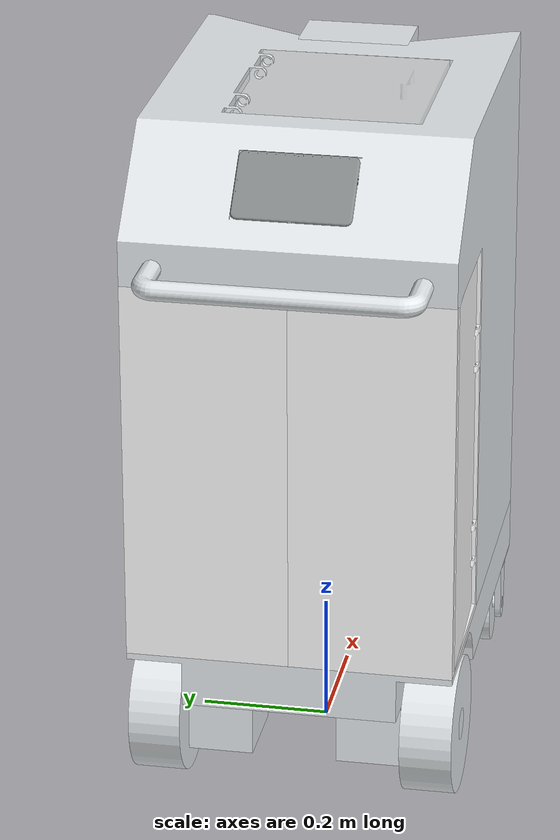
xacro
<?xml version="1.0" encoding="utf-8"?>
<robot name="hivebot_trolley">
  <link name="world"/>
  <link name="base_footprint" xmlns:xacro="http://www.ros.org/wiki/xacro"/>

  <joint name="base_joint" type="fixed">
    <origin xyz="0 0 0.05" rpy="0 0 0" />
    <parent link="base_footprint"/>
    <child link="base_link" />
  </joint>

  <link
    name="base_link">
    <inertial>
      <origin
        xyz="0.0235732763735559 -1.16156711654192E-16 -0.0393476182287232"
        rpy="0 0 0" />
      <mass
        value="63.3540430981409" />
      <inertia
        ixx="1.19803483723971"
        ixy="3.94354928014663E-16"
        ixz="0.00926065111324139"
        iyy="2.11869396240118"
        iyz="2.70482966665085E-18"
        izz="3.24789298834746" />
    </inertial>
    <visual>
      <origin
        xyz="0 0 0"
        rpy="0 0 0" />
      <geometry>
        <mesh
          filename="package://hivebot_trolley/meshes/base_link.STL" />
      </geometry>
      <material
        name="">
        <color
          rgba="0.898039215686275 0.917647058823529 0.929411764705882 1" />
      </material>
    </visual>
    <collision>
      <origin
        xyz="0 0 0"
        rpy="0 0 0" />
      <geometry>
        <mesh
          filename="package://hivebot_trolley/meshes/base_link.STL" />
      </geometry>
    </collision>
  </link>
  <joint
    name="compartment-2-to-base"
    type="fixed">
    <origin
      xyz="-0.2 -0.125 0"
      rpy="0 0 0" />
    <parent
      link="base_link" />
    <child
      link="compartment-2" />
    <axis
      xyz="0 0 0" />
  </joint>
  <link
    name="front_wheel_mount_plate_1">
    <inertial>
      <origin
        xyz="0 0 0.00372376098180309"
        rpy="0 0 0" />
      <mass
        value="0.0885122104446696" />
      <inertia
        ixx="4.96589186338358E-05"
        ixy="8.76460525250229E-21"
        ixz="4.57370748529084E-22"
        iyy="4.96589186338358E-05"
        iyz="-1.38813531491213E-23"
        izz="9.88794947001013E-05" />
    </inertial>
    <visual>
      <origin
        xyz="0 0 0"
        rpy="0 0 0" />
      <geometry>
        <mesh
          filename="package://hivebot_trolley/meshes/front_wheel_mount_plate_1.STL" />
      </geometry>
      <material
        name="">
        <color
          rgba="0.898039215686275 0.917647058823529 0.929411764705882 1" />
      </material>
    </visual>
    <collision>
      <origin
        xyz="0 0 0"
        rpy="0 0 0" />
      <geometry>
        <mesh
          filename="package://hivebot_trolley/meshes/front_wheel_mount_plate_1.STL" />
      </geometry>
    </collision>
  </link>
  <joint
    name="front_wheel_mount_plate_1_tobase"
    type="fixed">
    <origin
      xyz="0.28 -0.205 -0.086"
      rpy="0 0 0" />
    <parent
      link="base_link" />
    <child
      link="front_wheel_mount_plate_1" />
    <axis
      xyz="0 0 0" />
  </joint>
  <link
    name="front_wheel_holder_1">
    <inertial>
      <origin
        xyz="0 -5.55111512312578E-17 -0.0353498305391301"
        rpy="0 0 0" />
      <mass
        value="0.40765592096642" />
      <inertia
        ixx="0.000762776791330026"
        ixy="1.03138220220553E-05"
        ixz="6.91311896835273E-20"
        iyy="0.000501675770186767"
        iyz="-1.75192826322455E-19"
        izz="0.000528106575482838" />
    </inertial>
    <visual>
      <origin
        xyz="0 0 0"
        rpy="0 0 0" />
      <geometry>
        <mesh
          filename="package://hivebot_trolley/meshes/front_wheel_holder_1.STL" />
      </geometry>
      <material
        name="">
        <color
          rgba="0.898039215686275 0.917647058823529 0.929411764705882 1" />
      </material>
    </visual>
    <collision>
      <origin
        xyz="0 0 0"
        rpy="0 0 0" />
      <geometry>
        <mesh
          filename="package://hivebot_trolley/meshes/front_wheel_holder_1.STL" />
      </geometry>
    </collision>
  </link>
  <joint
    name="front_wheel_holder_1_toplate"
    type="fixed">
    <origin
      xyz="0 0 0"
      rpy="0 0 0" />
    <parent
      link="front_wheel_mount_plate_1" />
    <child
      link="front_wheel_holder_1" />
    <axis
      xyz="0 0 -1" />
  </joint>
  <link
    name="front_wheel_1">
    <inertial>
      <origin
        xyz="5.55111512312578E-17 8.32667268468867E-17 -5.55111512312578E-17"
        rpy="0 0 0" />
      <mass
        value="1.73558464244813" />
      <inertia
        ixx="0.00211027858785498"
        ixy="-5.2803822366633E-05"
        ixz="1.94419187005969E-19"
        iyy="0.00344704122644933"
        iyz="-2.97963645002492E-19"
        izz="0.00210819601428248" />
    </inertial>
    <visual>
      <origin
        xyz="0 0 0"
        rpy="0 0 0" />
      <geometry>
        <mesh
          filename="package://hivebot_trolley/meshes/front_wheel_1.STL" />
      </geometry>
      <material
        name="">
        <color
          rgba="0.898039215686275 0.917647058823529 0.929411764705882 1" />
      </material>
    </visual>
    <collision>
      <origin
        xyz="0 0 0"
        rpy="0 0 0" />
      <geometry>
        <mesh
          filename="package://hivebot_trolley/meshes/front_wheel_1.STL" />
      </geometry>
    </collision>
  </link>
  <joint
    name="front_wheel_1_toholder"
    type="fixed">
    <origin
      xyz="0 0 -0.081"
      rpy="0 0 0" />
    <parent
      link="front_wheel_holder_1" />
    <child
      link="front_wheel_1" />
    <axis
      xyz="-0.0394091875345171 0.99922315622581 0" />
  </joint>
  <link
    name="front_wheel_mount_plate_2">
    <inertial>
      <origin
        xyz="0 -2.77555756156289E-17 0.00372376098180309"
        rpy="0 0 0" />
      <mass
        value="0.0885122104446697" />
      <inertia
        ixx="4.96589186338359E-05"
        ixy="1.33252491072572E-20"
        ixz="1.0447510163914E-22"
        iyy="4.96589186338359E-05"
        iyz="6.3556804032152E-22"
        izz="9.88794947001014E-05" />
    </inertial>
    <visual>
      <origin
        xyz="0 0 0"
        rpy="0 0 0" />
      <geometry>
        <mesh
          filename="package://hivebot_trolley/meshes/front_wheel_mount_plate_2.STL" />
      </geometry>
      <material
        name="">
        <color
          rgba="0.898039215686275 0.917647058823529 0.929411764705882 1" />
      </material>
    </visual>
    <collision>
      <origin
        xyz="0 0 0"
        rpy="0 0 0" />
      <geometry>
        <mesh
          filename="package://hivebot_trolley/meshes/front_wheel_mount_plate_2.STL" />
      </geometry>
    </collision>
  </link>
  <joint
    name="front_wheel_mount_plate_2_tobase"
    type="fixed">
    <origin
      xyz="0.28 0.205 -0.086"
      rpy="0 0 0" />
    <parent
      link="base_link" />
    <child
      link="front_wheel_mount_plate_2" />
    <axis
      xyz="0 0 0" />
  </joint>
  <link
    name="front_wheel_holder_2">
    <inertial>
      <origin
        xyz="-5.55111512312578E-17 -5.55111512312578E-17 -0.0353498305391302"
        rpy="0 0 0" />
      <mass
        value="0.40765592096642" />
      <inertia
        ixx="0.00076152629456158"
        ixy="2.07681767546495E-05"
        ixz="-6.15417341469107E-20"
        iyy="0.000502926266955213"
        iyz="3.73082590857221E-19"
        izz="0.000528106575482838" />
    </inertial>
    <visual>
      <origin
        xyz="0 0 0"
        rpy="0 0 0" />
      <geometry>
        <mesh
          filename="package://hivebot_trolley/meshes/front_wheel_holder_2.STL" />
      </geometry>
      <material
        name="">
        <color
          rgba="0.898039215686275 0.917647058823529 0.929411764705882 1" />
      </material>
    </visual>
    <collision>
      <origin
        xyz="0 0 0"
        rpy="0 0 0" />
      <geometry>
        <mesh
          filename="package://hivebot_trolley/meshes/front_wheel_holder_2.STL" />
      </geometry>
    </collision>
  </link>
  <joint
    name="front_wheel_holder_2_toplate"
    type="fixed">
    <origin
      xyz="0 0 0"
      rpy="0 0 0" />
    <parent
      link="front_wheel_mount_plate_2" />
    <child
      link="front_wheel_holder_2" />
    <axis
      xyz="0 0 -1" />
  </joint>
  <link
    name="front_wheel_2">
    <inertial>
      <origin
        xyz="5.55111512312578E-17 0 0"
        rpy="0 0 0" />
      <mass
        value="1.73558464244813" />
      <inertia
        ixx="0.00211668077407555"
        ixy="-0.000106327132064745"
        ixz="-2.97271341358694E-19"
        iyy="0.00344063904022875"
        iyz="-1.72056927832268E-21"
        izz="0.00210819601428248" />
    </inertial>
    <visual>
      <origin
        xyz="0 0 0"
        rpy="0 0 0" />
      <geometry>
        <mesh
          filename="package://hivebot_trolley/meshes/front_wheel_2.STL" />
      </geometry>
      <material
        name="">
        <color
          rgba="0.898039215686275 0.917647058823529 0.929411764705882 1" />
      </material>
    </visual>
    <collision>
      <origin
        xyz="0 0 0"
        rpy="0 0 0" />
      <geometry>
        <mesh
          filename="package://hivebot_trolley/meshes/front_wheel_2.STL" />
      </geometry>
    </collision>
  </link>
  <joint
    name="front_wheel_2_toholder"
    type="fixed">
    <origin
      xyz="0 0 -0.081"
      rpy="0 0 0" />
    <parent
      link="front_wheel_holder_2" />
    <child
      link="front_wheel_2" />
    <axis
      xyz="0.0795457683033873 -0.996831214772603 0" />
  </joint>
  <link
    name="back_wheel_holder_2">
    <inertial>
      <origin
        xyz="-2.77555756156289E-17 0.12370581952403 2.77555756156289E-17"
        rpy="0 0 0" />
      <mass
        value="3.69062219624929" />
      <inertia
        ixx="0.00912658772080383"
        ixy="8.63502453250557E-19"
        ixz="-5.57023878196132E-19"
        iyy="0.00672881943632791"
        iyz="-2.81940192519475E-19"
        izz="0.0103145877208038" />
    </inertial>
    <visual>
      <origin
        xyz="0 0 0"
        rpy="0 0 0" />
      <geometry>
        <mesh
          filename="package://hivebot_trolley/meshes/back_wheel_holder_2.STL" />
      </geometry>
      <material
        name="">
        <color
          rgba="0.898039215686275 0.917647058823529 0.929411764705882 1" />
      </material>
    </visual>
    <collision>
      <origin
        xyz="0 0 0"
        rpy="0 0 0" />
      <geometry>
        <mesh
          filename="package://hivebot_trolley/meshes/back_wheel_holder_2.STL" />
      </geometry>
    </collision>
  </link>
  <joint
    name="back_wheel_holder_2_tobase"
    type="fixed">
    <origin
      xyz="-0.2185 -0.25 -0.13"
      rpy="0 0 0" />
    <parent
      link="base_link" />
    <child
      link="back_wheel_holder_2" />
    <axis
      xyz="0 0 0" />
  </joint>
  <link
    name="back_wheel_2">
    <inertial>
      <origin
        xyz="-5.55111512312578E-17 0.0399999999999996 4.16333634234434E-16"
        rpy="0 0 0" />
      <mass
        value="7.27255451520401" />
      <inertia
        ixx="0.0256368152469609"
        ixy="-3.1162102280413E-18"
        ixz="-1.17965325757309E-22"
        iyy="0.0435162390110376"
        iyz="2.68645908030935E-18"
        izz="0.0256368152469609" />
    </inertial>
    <visual>
      <origin
        xyz="0 0 0"
        rpy="0 0 0" />
      <geometry>
        <mesh
          filename="package://hivebot_trolley/meshes/back_wheel_2.STL" />
      </geometry>
      <material
        name="">
        <color
          rgba="0.898039215686275 0.917647058823529 0.929411764705882 1" />
      </material>
    </visual>
    <collision>
      <origin
        xyz="0 0 0"
        rpy="0 0 0" />
      <geometry>
        <mesh
          filename="package://hivebot_trolley/meshes/back_wheel_2.STL" />
      </geometry>
    </collision>
  </link>
  <joint
    name="back_wheel_2_toholder"
    type="fixed">
    <origin
      xyz="0 0 0"
      rpy="0 0 0" />
    <parent
      link="back_wheel_holder_2" />
    <child
      link="back_wheel_2" />
    <axis
      xyz="0 1 0" />
  </joint>
  <link
    name="back_wheel_holder_1">
    <inertial>
      <origin
        xyz="2.77555756156289E-17 -0.12370581952403 -2.77555756156289E-17"
        rpy="0 0 0" />
      <mass
        value="3.69062219624929" />
      <inertia
        ixx="0.00912658772080382"
        ixy="-5.58383894595012E-19"
        ixz="8.67342168411457E-19"
        iyy="0.00672881943632791"
        iyz="6.69411038953511E-20"
        izz="0.0103145877208038" />
    </inertial>
    <visual>
      <origin
        xyz="0 0 0"
        rpy="0 0 0" />
      <geometry>
        <mesh
          filename="package://hivebot_trolley/meshes/back_wheel_holder_1.STL" />
      </geometry>
      <material
        name="">
        <color
          rgba="0.898039215686275 0.917647058823529 0.929411764705882 1" />
      </material>
    </visual>
    <collision>
      <origin
        xyz="0 0 0"
        rpy="0 0 0" />
      <geometry>
        <mesh
          filename="package://hivebot_trolley/meshes/back_wheel_holder_1.STL" />
      </geometry>
    </collision>
  </link>
  <joint
    name="back_wheel_holder_1_tobase"
    type="fixed">
    <origin
      xyz="-0.2185 0.25 -0.13"
      rpy="0 0 0" />
    <parent
      link="base_link" />
    <child
      link="back_wheel_holder_1" />
    <axis
      xyz="0 0 0" />
  </joint>
  <link
    name="back_wheel_1">
    <inertial>
      <origin
        xyz="-5.55111512312578E-17 -0.04 0"
        rpy="0 0 0" />
      <mass
        value="7.27255451520401" />
      <inertia
        ixx="0.0256368152469609"
        ixy="-2.25459743055601E-18"
        ixz="1.57683124065269E-19"
        iyy="0.0435162390110376"
        iyz="4.84744605090424E-18"
        izz="0.0256368152469609" />
    </inertial>
    <visual>
      <origin
        xyz="0 0 0"
        rpy="0 0 0" />
      <geometry>
        <mesh
          filename="package://hivebot_trolley/meshes/back_wheel_1.STL" />
      </geometry>
      <material
        name="">
        <color
          rgba="0.898039215686275 0.917647058823529 0.929411764705882 1" />
      </material>
    </visual>
    <collision>
      <origin
        xyz="0 0 0"
        rpy="0 0 0" />
      <geometry>
        <mesh
          filename="package://hivebot_trolley/meshes/back_wheel_1.STL" />
      </geometry>
    </collision>
  </link>
  <joint
    name="back_wheel_1_toholder"
    type="fixed">
    <origin
      xyz="0 0 0"
      rpy="0 0 0" />
    <parent
      link="back_wheel_holder_1" />
    <child
      link="back_wheel_1" />
    <axis
      xyz="0 -1 0" />
  </joint>
  <link
    name="guiding_frame-2">
    <inertial>
      <origin
        xyz="5.55111512312578E-17 -1.36557830061531E-16 -0.52082343378767"
        rpy="0 0 0" />
      <mass
        value="15.546168" />
      <inertia
        ixx="1.04667928751446"
        ixy="-1.21627735877006E-18"
        ixz="9.73209658663459E-17"
        iyy="0.99672874017046"
        iyz="1.5679887871354E-16"
        izz="0.076308340032" />
    </inertial>
    <visual>
      <origin
        xyz="0 0 0"
        rpy="0 0 0" />
      <geometry>
        <mesh
          filename="package://hivebot_trolley/meshes/guiding_frame-2.STL" />
      </geometry>
      <material
        name="">
        <color
          rgba="0.898039215686275 0.917647058823529 0.929411764705882 1" />
      </material>
    </visual>
    <collision>
      <origin
        xyz="0 0 0"
        rpy="0 0 0" />
      <geometry>
        <mesh
          filename="package://hivebot_trolley/meshes/guiding_frame-2.STL" />
      </geometry>
    </collision>
  </link>
  <joint
    name="guiding-frame-2-tobase"
    type="fixed">
    <origin
      xyz="0.275 0 0.81"
      rpy="0 0 0" />
    <parent
      link="base_link" />
    <child
      link="guiding_frame-2" />
    <axis
      xyz="0 0 0" />
  </joint>
  <link
    name="mount-box">
    <inertial>
      <origin
        xyz="-3.33066907387547E-16 -5.43166688588743E-17 8.31973379078477E-13"
        rpy="0 0 0" />
      <mass
        value="3.88364559868246" />
      <inertia
        ixx="0.00932475709657866"
        ixy="-3.73105112956337E-19"
        ixz="-7.61186554870903E-19"
        iyy="0.00785069349852472"
        iyz="3.77869461474261E-19"
        izz="0.00784612520652471" />
    </inertial>
    <visual>
      <origin
        xyz="0.005 0 0"
        rpy="0 0 0" />
      <geometry>
        <mesh
          filename="package://hivebot_trolley/meshes/mount-box.STL" />
      </geometry>
      <material
        name="">
        <color
          rgba="0.898039215686275 0.917647058823529 0.929411764705882 1" />
      </material>
    </visual>
    <collision>
      <origin
        xyz="0.005 0 0"
        rpy="0 0 0" />
      <geometry>
        <mesh
          filename="package://hivebot_trolley/meshes/mount-box.STL" />
      </geometry>
    </collision>
  </link>
  <joint
    name="mount_box_to_frame"
    type="prismatic">
    <origin
      xyz="0 0 -0.57843375382"
      rpy="0 0 0" />
    <parent
      link="guiding_frame-2" />
    <child
      link="mount-box" />
    <axis
      xyz="0 0 1" />
    <limit
      lower="0"
      upper="0.48"
      effort="1000"
      velocity="0" />
  </joint>
  <link
    name="surrounding-frame">
    <inertial>
      <origin
        xyz="0.0846729181735194 0.000767773564878785 0.214525253910696"
        rpy="0 0 0" />
      <mass
        value="82.7476434299921" />
      <inertia
        ixx="3.78200016445154"
        ixy="-0.00222325591596084"
        ixz="-0.0201090148476572"
        iyy="3.39224065150316"
        iyz="-0.00236895559099694"
        izz="1.86426383436205" />
    </inertial>
    <visual>
      <origin
        xyz="0 0 0"
        rpy="0 0 0" />
      <geometry>
        <mesh
          filename="package://hivebot_trolley/meshes/surrounding-frame.STL" />
      </geometry>
      <material
        name="">
        <color
          rgba="0.898039215686275 0.917647058823529 0.929411764705882 1" />
      </material>
    </visual>
    <collision>
      <origin
        xyz="0 0 0"
        rpy="0 0 0" />
      <geometry>
        <mesh
          filename="package://hivebot_trolley/meshes/surrounding-frame.STL" />
      </geometry>
    </collision>
  </link>
  <joint
    name="surrounding-frame-to-base"
    type="fixed">
    <origin
      xyz="0.0749999999999998 0 0.16"
      rpy="0 0 0" />
    <parent
      link="base_link" />
    <child
      link="surrounding-frame" />
    <axis
      xyz="0 0 0" />
  </joint>
  <link
    name="cover-door">
    <inertial>
      <origin
        xyz="-0.150040997767576 -0.137889670402826 0.000346830907110185"
        rpy="0 0 0" />
      <mass
        value="2.05892920065877" />
      <inertia
        ixx="0.0140981800413022"
        ixy="-8.61535975977684E-06"
        ixz="2.2775979768361E-06"
        iyy="0.0153884352208601"
        iyz="4.71234485426862E-05"
        izz="0.0293377145153787" />
    </inertial>
    <visual>
      <origin
        xyz="0 0 0"
        rpy="0 0 0" />
      <geometry>
        <mesh
          filename="package://hivebot_trolley/meshes/cover-door.STL" />
      </geometry>
      <material
        name="">
        <color
          rgba="1 1 1 0.3" />
      </material>
    </visual>
    <collision>
      <origin
        xyz="0 0 0"
        rpy="0 0 0" />
      <geometry>
        <mesh
          filename="package://hivebot_trolley/meshes/cover-door.STL" />
      </geometry>
    </collision>
  </link>
  <joint
    name="cover-door-to-frame"
    type="fixed">
    <origin
      xyz="0.0899999999999999 0.118551612567476 0.64"
      rpy="0 0 0" />
    <parent
      link="surrounding-frame" />
    <child
      link="cover-door" />
    <axis
      xyz="-1 0 0" />
  </joint>
  <link
    name="tablet">
    <inertial>
      <origin
        xyz="-0.00212538959044117 -1.36883635898138E-05 0.00206874607906293"
        rpy="0 0 0" />
      <mass
        value="0.886766298135032" />
      <inertia
        ixx="0.00278972059920181"
        ixy="1.27724561345949E-07"
        ixz="-0.000432117490733407"
        iyy="0.000869274675297478"
        iyz="1.28403830937449E-07"
        izz="0.00278929527162149" />
    </inertial>
    <visual>
      <origin
        xyz="0 0 0"
        rpy="0 0 0" />
      <geometry>
        <mesh
          filename="package://hivebot_trolley/meshes/tablet.STL" />
      </geometry>
      <material
        name="">
        <color
          rgba="0.529411764705882 0.549019607843137 0.549019607843137 1" />
      </material>
    </visual>
    <collision>
      <origin
        xyz="0 0 0"
        rpy="0 0 0" />
      <geometry>
        <mesh
          filename="package://hivebot_trolley/meshes/tablet.STL" />
      </geometry>
    </collision>
  </link>
  <joint
    name="tablet-to-frame"
    type="fixed">
    <origin
      xyz="-0.323639610306789 0.001 0.579289321881345"
      rpy="0 0 0" />
    <parent
      link="surrounding-frame" />
    <child
      link="tablet" />
    <axis
      xyz="0 0 0" />
  </joint>
  <link
    name="handle">
    <inertial>
      <origin
        xyz="-0.0683128872678795 0.2 0"
        rpy="0 0 0" />
      <mass
        value="1.03600411126002" />
      <inertia
        ixx="0.0211986755913615"
        ixy="-3.76213226232454E-18"
        ixz="5.2805489928396E-20"
        iyy="0.000609084661143678"
        iyz="-5.58622665846924E-19"
        izz="0.0216912097899884" />
    </inertial>
    <visual>
      <origin
        xyz="0 0 0"
        rpy="0 0 0" />
      <geometry>
        <mesh
          filename="package://hivebot_trolley/meshes/handle.STL" />
      </geometry>
      <material
        name="">
        <color
          rgba="0.898039215686275 0.917647058823529 0.929411764705882 1" />
      </material>
    </visual>
    <collision>
      <origin
        xyz="0 0 0"
        rpy="0 0 0" />
      <geometry>
        <mesh
          filename="package://hivebot_trolley/meshes/handle.STL" />
      </geometry>
    </collision>
  </link>
  <joint
    name="handle-to-frame"
    type="fixed">
    <origin
      xyz="-0.4 -0.2 0.47"
      rpy="0 0 0" />
    <parent
      link="surrounding-frame" />
    <child
      link="handle" />
    <axis
      xyz="0 0 0" />
  </joint>
  <link
    name="tools">
    <inertial>
      <origin
        xyz="0.0135685512178612 -0.226707429071848 0.000429751102776738"
        rpy="0 0 0" />
      <mass
        value="1.10101723384343" />
      <inertia
        ixx="0.00181676017997894"
        ixy="-5.7000778196603E-19"
        ixz="2.91688343620181E-05"
        iyy="0.00170795242556321"
        iyz="-4.21950089664413E-19"
        izz="0.00133528189029824" />
    </inertial>
    <visual>
      <origin
        xyz="0 0 0"
        rpy="0 0 0" />
      <geometry>
        <mesh
          filename="package://hivebot_trolley/meshes/tools.STL" />
      </geometry>
      <material
        name="">
        <color
          rgba="0.898039215686275 0.917647058823529 0.929411764705882 1" />
      </material>
    </visual>
    <collision>
      <origin
        xyz="0 0 0"
        rpy="0 0 0" />
      <geometry>
        <mesh
          filename="package://hivebot_trolley/meshes/tools.STL" />
      </geometry>
    </collision>
  </link>
  <joint
    name="tools-to-frame"
    type="fixed">
    <origin
      xyz="0.243049636115999 0.226707429071858 0.0599999999999998"
      rpy="0 0 0" />
    <parent
      link="surrounding-frame" />
    <child
      link="tools" />
    <axis
      xyz="0 0 0" />
  </joint>
  <link
    name="compartment-1">
    <inertial>
      <origin
        xyz="0.0159462607609362 -0.00910725247573026 0.274676056153122"
        rpy="0 0 0" />
      <mass
        value="1.05739476651221" />
      <inertia
        ixx="0.033888709501066"
        ixy="1.08388147884056E-17"
        ixz="-1.95856102547443E-19"
        iyy="0.0369783137022633"
        iyz="0.000886251680853717"
        izz="0.0144797683018268" />
    </inertial>
    <visual>
      <origin
        xyz="0 0 0"
        rpy="0 0 0" />
      <geometry>
        <mesh
          filename="package://hivebot_trolley/meshes/compartment-1.STL" />
      </geometry>
      <material
        name="">
        <color
          rgba="1 1 1 1" />
      </material>
    </visual>
    <collision>
      <origin
        xyz="0 0 0"
        rpy="0 0 0" />
      <geometry>
        <mesh
          filename="package://hivebot_trolley/meshes/compartment-1.STL" />
      </geometry>
    </collision>
  </link>
  <joint
    name="compartment-1-tobase"
    type="fixed">
    <origin
      xyz="-0.2 0.125 0"
      rpy="0 0 0" />
    <parent
      link="base_link" />
    <child
      link="compartment-1" />
    <axis
      xyz="0 0 0" />
  </joint>
  <link
    name="door-1">
    <inertial>
      <origin
        xyz="-0.103829601822913 0.000286037081769358 0.295291950301883"
        rpy="0 0 0" />
      <mass
        value="0.209666054570214" />
      <inertia
        ixx="0.00608838595202948"
        ixy="2.38341449388362E-06"
        ixz="-6.35562463955881E-06"
        iyy="0.00695354335829767"
        iyz="1.75089212787349E-08"
        izz="0.000868657642586339" />
    </inertial>
    <visual>
      <origin
        xyz="0 0 0"
        rpy="0 0 0" />
      <geometry>
        <mesh
          filename="package://hivebot_trolley/meshes/door-1.STL" />
      </geometry>
      <material
        name="">
        <color
          rgba="1 1 1 1" />
      </material>
    </visual>
    <collision>
      <origin
        xyz="0 0 0"
        rpy="0 0 0" />
      <geometry>
        <mesh
          filename="package://hivebot_trolley/meshes/door-1.STL" />
      </geometry>
    </collision>
  </link>
  <joint
    name="door-1-to-compartment"
    type="fixed">
    <origin
      xyz="0.0999999999999994 0.115 0.00999999999999993"
      rpy="0 0 0" />
    <parent
      link="compartment-1" />
    <child
      link="door-1" />
    <axis
      xyz="0 0 1" />
  </joint>
  <link
    name="compartment-2">
    <inertial>
      <origin
        xyz="0.0159462607609365 0.00910725247573027 0.274676056153122"
        rpy="0 0 0" />
      <mass
        value="1.05739476651221" />
      <inertia
        ixx="0.033888709501066"
        ixy="1.20681831383722E-17"
        ixz="3.61843005233635E-18"
        iyy="0.0369783137022634"
        iyz="-0.000886251680853721"
        izz="0.0144797683018268" />
    </inertial>
    <visual>
      <origin
        xyz="0 0 0"
        rpy="0 0 0" />
      <geometry>
        <mesh
          filename="package://hivebot_trolley/meshes/compartment-2.STL" />
      </geometry>
      <material
        name="">
        <color
          rgba="1 1 1 1" />
      </material>
    </visual>
    <collision>
      <origin
        xyz="0 0 0"
        rpy="0 0 0" />
      <geometry>
        <mesh
          filename="package://hivebot_trolley/meshes/compartment-2.STL" />
      </geometry>
    </collision>
  </link>
  <link
    name="door-2">
    <inertial>
      <origin
        xyz="-0.103778785036784 -0.00326064536650364 0.295291950301883"
        rpy="0 0 0" />
      <mass
        value="0.209666054570215" />
      <inertia
        ixx="0.00608923261026625"
        ixy="-2.71561499219606E-05"
        ixz="-6.35251403899478E-06"
        iyy="0.00695269670006093"
        iyz="-1.99590845658357E-07"
        izz="0.000868657642586341" />
    </inertial>
    <visual>
      <origin
        xyz="0 0 0"
        rpy="0 0 0" />
      <geometry>
        <mesh
          filename="package://hivebot_trolley/meshes/door-2.STL" />
      </geometry>
      <material
        name="">
        <color
          rgba="1 1 1 1" />
      </material>
    </visual>
    <collision>
      <origin
        xyz="0 0 0"
        rpy="0 0 0" />
      <geometry>
        <mesh
          filename="package://hivebot_trolley/meshes/door-2.STL" />
      </geometry>
    </collision>
  </link>
  <joint
    name="door-2-to-compartment"
    type="fixed">
    <origin
      xyz="0.1 -0.115 0.00999999999999982"
      rpy="0 0 0" />
    <parent
      link="compartment-2" />
    <child
      link="door-2" />
    <axis
      xyz="0 0 1" />
  </joint>

  <joint name="world_base" type="fixed">
    <origin xyz="0 0 0.2"/>
    <parent link="world"/>
    <child link="base_footprint"/>
  </joint>

</robot>
